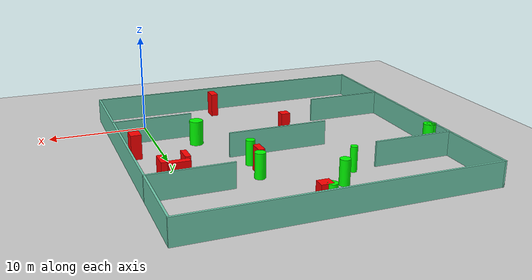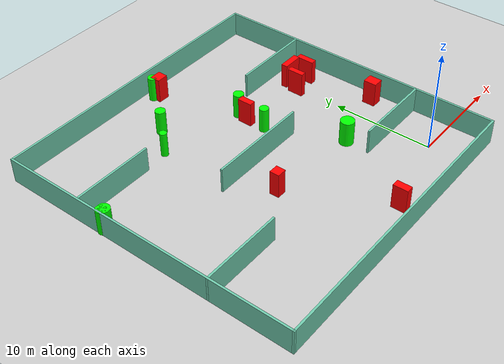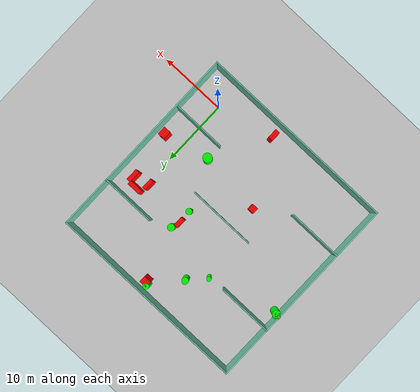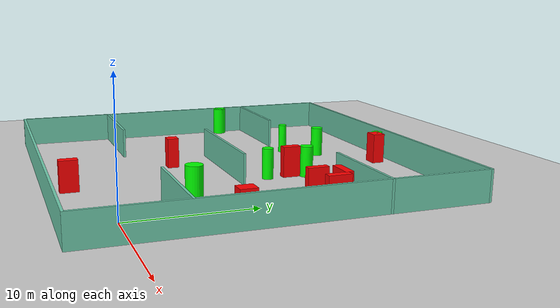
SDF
<sdf version="1.7">
 <world name="default">
  <light name="sun" type="directional">
   <pose>0 0 10 0 -0 0</pose>
   <diffuse>0.8 0.8 0.8 1</diffuse>
   <specular>0.2 0.2 0.2 1</specular>
   <attenuation>
    <range>1000</range>
    <constant>0.9</constant>
    <linear>0.01</linear>
    <quadratic>0.001</quadratic>
   </attenuation>
   <direction>-0.5 0.1 -0.9</direction>
   <spot><inner_angle>0</inner_angle><outer_angle>0</outer_angle><falloff>0</falloff></spot>
  </light>
  <model name="ground_plane">
   <static>1</static>
   <link name="link">
    <collision name="collision">
     <geometry><plane><normal>0 0 1</normal><size>100 100</size></plane></geometry>
     <surface>
      <contact><collide_bitmask>65535</collide_bitmask></contact>
      <friction><ode><mu>100</mu><mu2>50</mu2></ode></friction>
     </surface>
    </collision>
    <visual name="visual">
     <cast_shadows>0</cast_shadows>
     <geometry><plane><normal>0 0 1</normal><size>100 100</size></plane></geometry>
     <material>
      <script><uri>file://media/materials/scripts/gazebo.material</uri><name>Gazebo/Grey</name></script>
     </material>
    </visual>
   </link>
  </model>
  <gravity>0 0 -9.8</gravity>
  <magnetic_field>6e-06 2.3e-05 -4.2e-05</magnetic_field>
  <atmosphere type="adiabatic"/>
  <physics type="ode">
   <max_step_size>0.001</max_step_size>
   <real_time_factor>1</real_time_factor>
   <real_time_update_rate>1000</real_time_update_rate>
  </physics>
  <scene><ambient>0.4 0.4 0.4 1</ambient><background>0.7 0.7 0.7 1</background><shadows>1</shadows></scene>
  <spherical_coordinates>
   <surface_model>EARTH_WGS84</surface_model>
   <latitude_deg>0</latitude_deg>
   <longitude_deg>0</longitude_deg>
   <elevation>0</elevation>
   <heading_deg>0</heading_deg>
  </spherical_coordinates>
  <model name="my_base_walls">
   <link name="Wall_10">
    <collision name="Wall_10_Collision">
     <geometry><box><size>8.2 0.2 2.5</size></box></geometry>
     <pose>0 0 1.25 0 -0 0</pose>
    </collision>
    <visual name="Wall_10_Visual">
     <pose>0 0 1.25 0 -0 0</pose>
     <geometry><box><size>8.2 0.2 2.5</size></box></geometry>
     <material>
      <script><uri>file://media/materials/scripts/gazebo.material</uri><name>Gazebo/Grey</name></script>
      <ambient>0.435294 0.796078 0.67451 1</ambient>
     </material>
     <meta><layer>0</layer></meta>
    </visual>
    <pose>-11 -7 0 0 -0 0</pose>
   </link>
   <link name="Wall_12">
    <collision name="Wall_12_Collision">
     <geometry><box><size>8.2 0.2 2.5</size></box></geometry>
     <pose>0 0 1.25 0 -0 0</pose>
    </collision>
    <visual name="Wall_12_Visual">
     <pose>0 0 1.25 0 -0 0</pose>
     <geometry><box><size>8.2 0.2 2.5</size></box></geometry>
     <material>
      <script><uri>file://media/materials/scripts/gazebo.material</uri><name>Gazebo/Grey</name></script>
      <ambient>0.435294 0.796078 0.67451 1</ambient>
     </material>
     <meta><layer>0</layer></meta>
    </visual>
    <pose>-11 7 0 0 -0 0</pose>
   </link>
   <link name="Wall_14">
    <collision name="Wall_14_Collision">
     <geometry><box><size>8.2 0.2 2.5</size></box></geometry>
     <pose>0 0 1.25 0 -0 0</pose>
    </collision>
    <visual name="Wall_14_Visual">
     <pose>0 0 1.25 0 -0 0</pose>
     <geometry><box><size>8.2 0.2 2.5</size></box></geometry>
     <material>
      <script><uri>file://media/materials/scripts/gazebo.material</uri><name>Gazebo/Grey</name></script>
      <ambient>0.435294 0.796078 0.67451 1</ambient>
     </material>
     <meta><layer>0</layer></meta>
    </visual>
    <pose>11 7 0 0 -0 3.14159</pose>
   </link>
   <link name="Wall_16">
    <collision name="Wall_16_Collision">
     <geometry><box><size>10.2 0.2 2.5</size></box></geometry>
     <pose>0 0 1.25 0 -0 0</pose>
    </collision>
    <visual name="Wall_16_Visual">
     <pose>0 0 1.25 0 -0 0</pose>
     <geometry><box><size>10.2 0.2 2.5</size></box></geometry>
     <material>
      <script><uri>file://media/materials/scripts/gazebo.material</uri><name>Gazebo/Grey</name></script>
      <ambient>0.435294 0.796078 0.67451 1</ambient>
     </material>
     <meta><layer>0</layer></meta>
    </visual>
    <pose>0 0 0 0 -0 3.14159</pose>
   </link>
   <link name="Wall_2">
    <collision name="Wall_2_Collision">
     <geometry><box><size>30.2 0.2 2.5</size></box></geometry>
     <pose>0 0 1.25 0 -0 0</pose>
    </collision>
    <visual name="Wall_2_Visual">
     <pose>0 0 1.25 0 -0 0</pose>
     <geometry><box><size>30.2 0.2 2.5</size></box></geometry>
     <material>
      <script><uri>file://media/materials/scripts/gazebo.material</uri><name>Gazebo/Grey</name></script>
      <ambient>0.435294 0.796078 0.67451 1</ambient>
     </material>
     <meta><layer>0</layer></meta>
    </visual>
    <pose>0 -15 0 0 -0 3.14159</pose>
   </link>
   <link name="Wall_3">
    <collision name="Wall_3_Collision">
     <geometry><box><size>30.2 0.2 2.5</size></box></geometry>
     <pose>0 0 1.25 0 -0 0</pose>
    </collision>
    <visual name="Wall_3_Visual">
     <pose>0 0 1.25 0 -0 0</pose>
     <geometry><box><size>30.2 0.2 2.5</size></box></geometry>
     <material>
      <script><uri>file://media/materials/scripts/gazebo.material</uri><name>Gazebo/Grey</name></script>
      <ambient>0.435294 0.796078 0.67451 1</ambient>
     </material>
     <meta><layer>0</layer></meta>
    </visual>
    <pose>-15 0 0 0 -0 1.5708</pose>
   </link>
   <link name="Wall_4">
    <collision name="Wall_4_Collision">
     <geometry><box><size>30.2 0.2 2.5</size></box></geometry>
     <pose>0 0 1.25 0 -0 0</pose>
    </collision>
    <visual name="Wall_4_Visual">
     <pose>0 0 1.25 0 -0 0</pose>
     <geometry><box><size>30.2 0.2 2.5</size></box></geometry>
     <material>
      <script><uri>file://media/materials/scripts/gazebo.material</uri><name>Gazebo/Grey</name></script>
      <ambient>0.435294 0.796078 0.67451 1</ambient>
     </material>
     <meta><layer>0</layer></meta>
    </visual>
    <pose>0 15 0 0 -0 0</pose>
   </link>
   <link name="Wall_6">
    <collision name="Wall_6_Collision">
     <geometry><box><size>30.2 0.2 2.5</size></box></geometry>
     <pose>0 0 1.25 0 -0 0</pose>
    </collision>
    <visual name="Wall_6_Visual">
     <pose>0 0 1.25 0 -0 0</pose>
     <geometry><box><size>30.2 0.2 2.5</size></box></geometry>
     <material>
      <script><uri>file://media/materials/scripts/gazebo.material</uri><name>Gazebo/Grey</name></script>
      <ambient>0.435294 0.796078 0.67451 1</ambient>
     </material>
     <meta><layer>0</layer></meta>
    </visual>
    <pose>15 0 0 0 -0 1.5708</pose>
   </link>
   <link name="Wall_8">
    <collision name="Wall_8_Collision">
     <geometry><box><size>8.2 0.2 2.5</size></box></geometry>
     <pose>0 0 1.25 0 -0 0</pose>
    </collision>
    <visual name="Wall_8_Visual">
     <pose>0 0 1.25 0 -0 0</pose>
     <geometry><box><size>8.2 0.2 2.5</size></box></geometry>
     <material>
      <script><uri>file://media/materials/scripts/gazebo.material</uri><name>Gazebo/Grey</name></script>
      <ambient>0.435294 0.796078 0.67451 1</ambient>
     </material>
     <meta><layer>0</layer></meta>
    </visual>
    <pose>11 -7 0 0 -0 3.14159</pose>
   </link>
   <static>1</static>
   <pose>-11 11 0 0 -0 0</pose>
  </model>
  <model name="cylinder1">
   <static>1</static>
   <link name="link">
    <inertial>
     <mass>1</mass>
     <inertia><ixx>0.5</ixx><ixy>0</ixy><ixz>0</ixz><iyy>0.5</iyy><iyz>0</iyz><izz>1</izz></inertia>
    </inertial>
    <collision name="collision">
     <geometry><cylinder><radius>0.45357839826528834</radius><length>2.5</length></cylinder></geometry>
    </collision>
    <visual name="visual">
     <geometry><cylinder><radius>0.45357839826528834</radius><length>2.5</length></cylinder></geometry>
     <material>
      <ambient>0 1 0 1</ambient>
      <diffuse>0 1 0 1</diffuse>
      <specular>0.1 0.1 0.1 1</specular>
      <emissive>0 0 0 0</emissive>
     </material>
    </visual>
   </link>
   <pose>-7.142562419022138 13.431178928264828 1.25 0 0 0</pose>
  </model>
  <model name="cylinder2">
   <static>1</static>
   <link name="link">
    <inertial>
     <mass>1</mass>
     <inertia><ixx>0.5</ixx><ixy>0</ixy><ixz>0</ixz><iyy>0.5</iyy><iyz>0</iyz><izz>1</izz></inertia>
    </inertial>
    <collision name="collision">
     <geometry><cylinder><radius>0.34771288768814324</radius><length>2.5</length></cylinder></geometry>
    </collision>
    <visual name="visual">
     <geometry><cylinder><radius>0.34771288768814324</radius><length>2.5</length></cylinder></geometry>
     <material>
      <ambient>0 1 0 1</ambient>
      <diffuse>0 1 0 1</diffuse>
      <specular>0.1 0.1 0.1 1</specular>
      <emissive>0 0 0 0</emissive>
     </material>
    </visual>
   </link>
   <pose>-15.457350209007526 18.26557577289275 1.25 0 0 0</pose>
  </model>
  <model name="cylinder3">
   <static>1</static>
   <link name="link">
    <inertial>
     <mass>1</mass>
     <inertia><ixx>0.5</ixx><ixy>0</ixy><ixz>0</ixz><iyy>0.5</iyy><iyz>0</iyz><izz>1</izz></inertia>
    </inertial>
    <collision name="collision">
     <geometry><cylinder><radius>0.5966375600997322</radius><length>2.5</length></cylinder></geometry>
    </collision>
    <visual name="visual">
     <geometry><cylinder><radius>0.5966375600997322</radius><length>2.5</length></cylinder></geometry>
     <material>
      <ambient>0 1 0 1</ambient>
      <diffuse>0 1 0 1</diffuse>
      <specular>0.1 0.1 0.1 1</specular>
      <emissive>0 0 0 0</emissive>
     </material>
    </visual>
   </link>
   <pose>-25.477063043102937 15.46020675690093 1.25 0 0 0</pose>
  </model>
  <model name="cylinder4">
   <static>1</static>
   <link name="link">
    <inertial>
     <mass>1</mass>
     <inertia><ixx>0.5</ixx><ixy>0</ixy><ixz>0</ixz><iyy>0.5</iyy><iyz>0</iyz><izz>1</izz></inertia>
    </inertial>
    <collision name="collision">
     <geometry><cylinder><radius>0.5254705449108112</radius><length>2.5</length></cylinder></geometry>
    </collision>
    <visual name="visual">
     <geometry><cylinder><radius>0.5254705449108112</radius><length>2.5</length></cylinder></geometry>
     <material>
      <ambient>0 1 0 1</ambient>
      <diffuse>0 1 0 1</diffuse>
      <specular>0.1 0.1 0.1 1</specular>
      <emissive>0 0 0 0</emissive>
     </material>
    </visual>
   </link>
   <pose>-6.850227251383565 16.672464309332398 1.25 0 0 0</pose>
  </model>
  <model name="cylinder5">
   <static>1</static>
   <link name="link">
    <inertial>
     <mass>1</mass>
     <inertia><ixx>0.5</ixx><ixy>0</ixy><ixz>0</ixz><iyy>0.5</iyy><iyz>0</iyz><izz>1</izz></inertia>
    </inertial>
    <collision name="collision">
     <geometry><cylinder><radius>0.6858590190748175</radius><length>2.5</length></cylinder></geometry>
    </collision>
    <visual name="visual">
     <geometry><cylinder><radius>0.6858590190748175</radius><length>2.5</length></cylinder></geometry>
     <material>
      <ambient>0 1 0 1</ambient>
      <diffuse>0 1 0 1</diffuse>
      <specular>0.1 0.1 0.1 1</specular>
      <emissive>0 0 0 0</emissive>
     </material>
    </visual>
   </link>
   <pose>-3.960035847293195 6.362381155437355 1.25 0 0 0</pose>
  </model>
  <model name="cylinder6">
   <static>1</static>
   <link name="link">
    <inertial>
     <mass>1</mass>
     <inertia><ixx>0.5</ixx><ixy>0</ixy><ixz>0</ixz><iyy>0.5</iyy><iyz>0</iyz><izz>1</izz></inertia>
    </inertial>
    <collision name="collision">
     <geometry><cylinder><radius>0.45727814400153144</radius><length>2.5</length></cylinder></geometry>
    </collision>
    <visual name="visual">
     <geometry><cylinder><radius>0.45727814400153144</radius><length>2.5</length></cylinder></geometry>
     <material>
      <ambient>0 1 0 1</ambient>
      <diffuse>0 1 0 1</diffuse>
      <specular>0.1 0.1 0.1 1</specular>
      <emissive>0 0 0 0</emissive>
     </material>
    </visual>
   </link>
   <pose>-9.875869453160742 24.869831563340817 1.25 0 0 0</pose>
  </model>
  <model name="cylinder7">
   <static>1</static>
   <link name="link">
    <inertial>
     <mass>1</mass>
     <inertia><ixx>0.5</ixx><ixy>0</ixy><ixz>0</ixz><iyy>0.5</iyy><iyz>0</iyz><izz>1</izz></inertia>
    </inertial>
    <collision name="collision">
     <geometry><cylinder><radius>0.4991654450764148</radius><length>2.5</length></cylinder></geometry>
    </collision>
    <visual name="visual">
     <geometry><cylinder><radius>0.4991654450764148</radius><length>2.5</length></cylinder></geometry>
     <material>
      <ambient>0 1 0 1</ambient>
      <diffuse>0 1 0 1</diffuse>
      <specular>0.1 0.1 0.1 1</specular>
      <emissive>0 0 0 0</emissive>
     </material>
    </visual>
   </link>
   <pose>-13.256172559211596 20.67857980036649 1.25 0 0 0</pose>
  </model>
  <model name="cylinder8">
   <static>1</static>
   <link name="link">
    <inertial>
     <mass>1</mass>
     <inertia><ixx>0.5</ixx><ixy>0</ixy><ixz>0</ixz><iyy>0.5</iyy><iyz>0</iyz><izz>1</izz></inertia>
    </inertial>
    <collision name="collision">
     <geometry><cylinder><radius>0.49878974948066396</radius><length>2.5</length></cylinder></geometry>
    </collision>
    <visual name="visual">
     <geometry><cylinder><radius>0.49878974948066396</radius><length>2.5</length></cylinder></geometry>
     <material>
      <ambient>0 1 0 1</ambient>
      <diffuse>0 1 0 1</diffuse>
      <specular>0.1 0.1 0.1 1</specular>
      <emissive>0 0 0 0</emissive>
     </material>
    </visual>
   </link>
   <pose>-25.69175678752754 15.552659495177508 1.25 0 0 0</pose>
  </model>
  <model name="box1">
   <static>1</static>
   <link name="link">
    <inertial>
     <mass>1</mass>
     <inertia><ixx>0.083</ixx><ixy>0</ixy><ixz>0</ixz><iyy>0.083</iyy><iyz>0</iyz><izz>0.083</izz></inertia>
    </inertial>
    <collision name="collision">
     <geometry><box><size>1.0628872295564222 1.2934783354382418 2.5</size></box></geometry>
    </collision>
    <visual name="visual">
     <geometry><box><size>1.0628872295564222 1.2934783354382418 2.5</size></box></geometry>
     <material>
      <ambient>1 0 0 1</ambient>
      <diffuse>1 0 0 1</diffuse>
      <specular>0.1 0.1 0.1 1</specular>
      <emissive>0 0 0 0</emissive>
     </material>
    </visual>
    <sensor name="my_contact" type="contact">
     <contact><collision>box_collision</collision><topic>__default_topic__</topic></contact>
    </sensor>
   </link>
   <pose>2.6605508739206627 7.938677057047888 1.25 0 0 0</pose>
  </model>
  <model name="box2">
   <static>1</static>
   <link name="link">
    <inertial>
     <mass>1</mass>
     <inertia><ixx>0.083</ixx><ixy>0</ixy><ixz>0</ixz><iyy>0.083</iyy><iyz>0</iyz><izz>0.083</izz></inertia>
    </inertial>
    <collision name="collision">
     <geometry><box><size>2.0426117737283827 0.634516428847917 2.5</size></box></geometry>
    </collision>
    <visual name="visual">
     <geometry><box><size>2.0426117737283827 0.634516428847917 2.5</size></box></geometry>
     <material>
      <ambient>1 0 0 1</ambient>
      <diffuse>1 0 0 1</diffuse>
      <specular>0.1 0.1 0.1 1</specular>
      <emissive>0 0 0 0</emissive>
     </material>
    </visual>
    <sensor name="my_contact" type="contact">
     <contact><collision>box_collision</collision><topic>__default_topic__</topic></contact>
    </sensor>
   </link>
   <pose>0.4771076166246999 16.08218153444674 1.25 0 0 0</pose>
  </model>
  <model name="box3">
   <static>1</static>
   <link name="link">
    <inertial>
     <mass>1</mass>
     <inertia><ixx>0.083</ixx><ixy>0</ixy><ixz>0</ixz><iyy>0.083</iyy><iyz>0</iyz><izz>0.083</izz></inertia>
    </inertial>
    <collision name="collision">
     <geometry><box><size>0.723735555445898 1.4655189399881619 2.5</size></box></geometry>
    </collision>
    <visual name="visual">
     <geometry><box><size>0.723735555445898 1.4655189399881619 2.5</size></box></geometry>
     <material>
      <ambient>1 0 0 1</ambient>
      <diffuse>1 0 0 1</diffuse>
      <specular>0.1 0.1 0.1 1</specular>
      <emissive>0 0 0 0</emissive>
     </material>
    </visual>
    <sensor name="my_contact" type="contact">
     <contact><collision>box_collision</collision><topic>__default_topic__</topic></contact>
    </sensor>
   </link>
   <pose>-8.453120271402382 -2.1313305504666387 1.25 0 0 0</pose>
  </model>
  <model name="box4">
   <static>1</static>
   <link name="link">
    <inertial>
     <mass>1</mass>
     <inertia><ixx>0.083</ixx><ixy>0</ixy><ixz>0</ixz><iyy>0.083</iyy><iyz>0</iyz><izz>0.083</izz></inertia>
    </inertial>
    <collision name="collision">
     <geometry><box><size>0.5457557056203981 1.6387793094283811 2.5</size></box></geometry>
    </collision>
    <visual name="visual">
     <geometry><box><size>0.5457557056203981 1.6387793094283811 2.5</size></box></geometry>
     <material>
      <ambient>1 0 0 1</ambient>
      <diffuse>1 0 0 1</diffuse>
      <specular>0.1 0.1 0.1 1</specular>
      <emissive>0 0 0 0</emissive>
     </material>
    </visual>
    <sensor name="my_contact" type="contact">
     <contact><collision>box_collision</collision><topic>__default_topic__</topic></contact>
    </sensor>
   </link>
   <pose>-0.5499201109293317 14.572393939600627 1.25 0 0 0</pose>
  </model>
  <model name="box5">
   <static>1</static>
   <link name="link">
    <inertial>
     <mass>1</mass>
     <inertia><ixx>0.083</ixx><ixy>0</ixy><ixz>0</ixz><iyy>0.083</iyy><iyz>0</iyz><izz>0.083</izz></inertia>
    </inertial>
    <collision name="collision">
     <geometry><box><size>0.6079998942571668 1.809962023283095 2.5</size></box></geometry>
    </collision>
    <visual name="visual">
     <geometry><box><size>0.6079998942571668 1.809962023283095 2.5</size></box></geometry>
     <material>
      <ambient>1 0 0 1</ambient>
      <diffuse>1 0 0 1</diffuse>
      <specular>0.1 0.1 0.1 1</specular>
      <emissive>0 0 0 0</emissive>
     </material>
    </visual>
    <sensor name="my_contact" type="contact">
     <contact><collision>box_collision</collision><topic>__default_topic__</topic></contact>
    </sensor>
   </link>
   <pose>1.7517436802678503 15.092587960085808 1.25 0 0 0</pose>
  </model>
  <model name="box6">
   <static>1</static>
   <link name="link">
    <inertial>
     <mass>1</mass>
     <inertia><ixx>0.083</ixx><ixy>0</ixy><ixz>0</ixz><iyy>0.083</iyy><iyz>0</iyz><izz>0.083</izz></inertia>
    </inertial>
    <collision name="collision">
     <geometry><box><size>1.161572874932078 1.007756914652513 2.5</size></box></geometry>
    </collision>
    <visual name="visual">
     <geometry><box><size>1.161572874932078 1.007756914652513 2.5</size></box></geometry>
     <material>
      <ambient>1 0 0 1</ambient>
      <diffuse>1 0 0 1</diffuse>
      <specular>0.1 0.1 0.1 1</specular>
      <emissive>0 0 0 0</emissive>
     </material>
    </visual>
    <sensor name="my_contact" type="contact">
     <contact><collision>box_collision</collision><topic>__default_topic__</topic></contact>
    </sensor>
   </link>
   <pose>-9.388085680533166 24.476467168361932 1.25 0 0 0</pose>
  </model>
  <model name="box7">
   <static>1</static>
   <link name="link">
    <inertial>
     <mass>1</mass>
     <inertia><ixx>0.083</ixx><ixy>0</ixy><ixz>0</ixz><iyy>0.083</iyy><iyz>0</iyz><izz>0.083</izz></inertia>
    </inertial>
    <collision name="collision">
     <geometry><box><size>0.9366411426858777 0.9404447192525786 2.5</size></box></geometry>
    </collision>
    <visual name="visual">
     <geometry><box><size>0.9366411426858777 0.9404447192525786 2.5</size></box></geometry>
     <material>
      <ambient>1 0 0 1</ambient>
      <diffuse>1 0 0 1</diffuse>
      <specular>0.1 0.1 0.1 1</specular>
      <emissive>0 0 0 0</emissive>
     </material>
    </visual>
    <sensor name="my_contact" type="contact">
     <contact><collision>box_collision</collision><topic>__default_topic__</topic></contact>
    </sensor>
   </link>
   <pose>-13.292249789407538 7.1698291649165675 1.25 0 0 0</pose>
  </model>
  <model name="box8">
   <static>1</static>
   <link name="link">
    <inertial>
     <mass>1</mass>
     <inertia><ixx>0.083</ixx><ixy>0</ixy><ixz>0</ixz><iyy>0.083</iyy><iyz>0</iyz><izz>0.083</izz></inertia>
    </inertial>
    <collision name="collision">
     <geometry><box><size>0.6396816641033494 1.4433596500948875 2.5</size></box></geometry>
    </collision>
    <visual name="visual">
     <geometry><box><size>0.6396816641033494 1.4433596500948875 2.5</size></box></geometry>
     <material>
      <ambient>1 0 0 1</ambient>
      <diffuse>1 0 0 1</diffuse>
      <specular>0.1 0.1 0.1 1</specular>
      <emissive>0 0 0 0</emissive>
     </material>
    </visual>
    <sensor name="my_contact" type="contact">
     <contact><collision>box_collision</collision><topic>__default_topic__</topic></contact>
    </sensor>
   </link>
   <pose>-7.220517144870499 15.430581641162455 1.25 0 0 0</pose>
  </model>
 </world>
</sdf>
